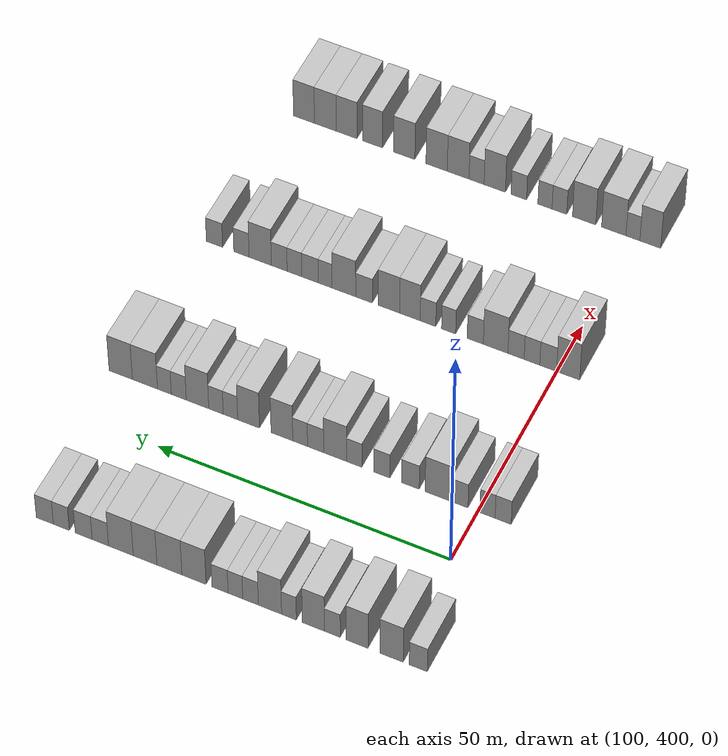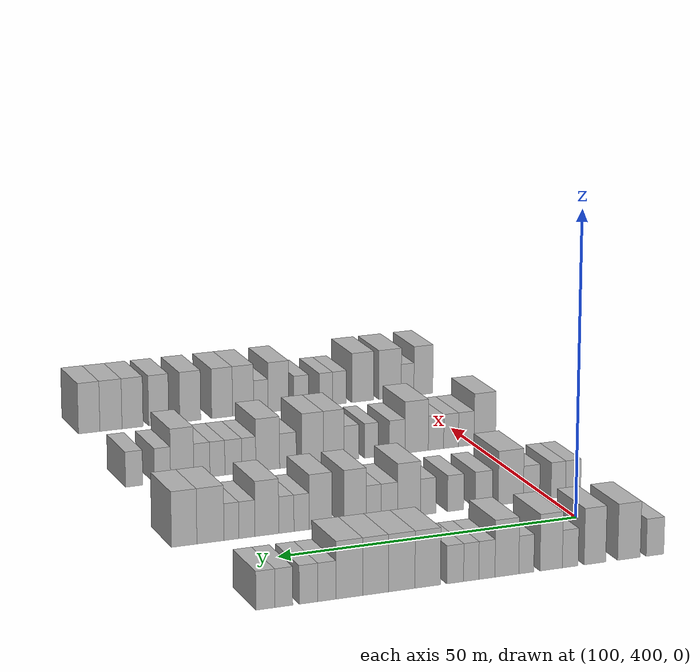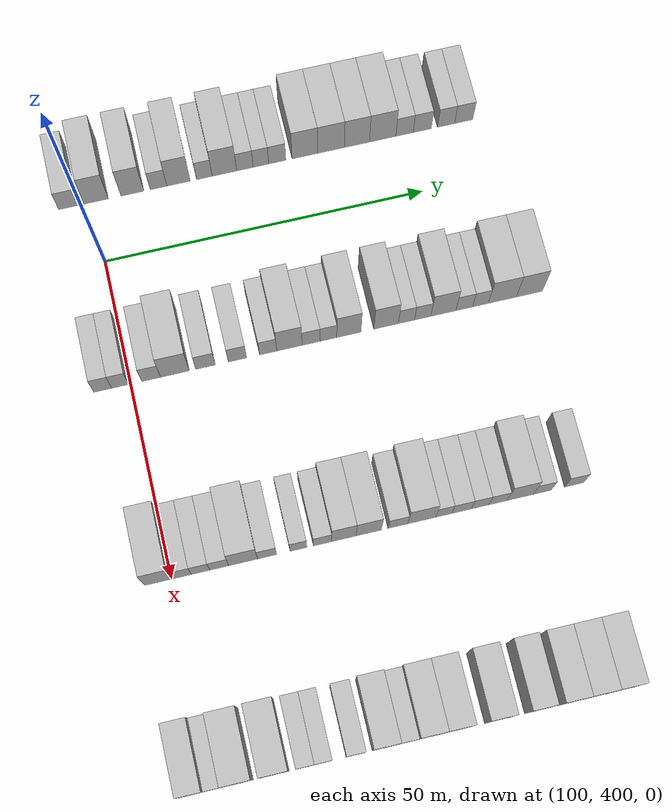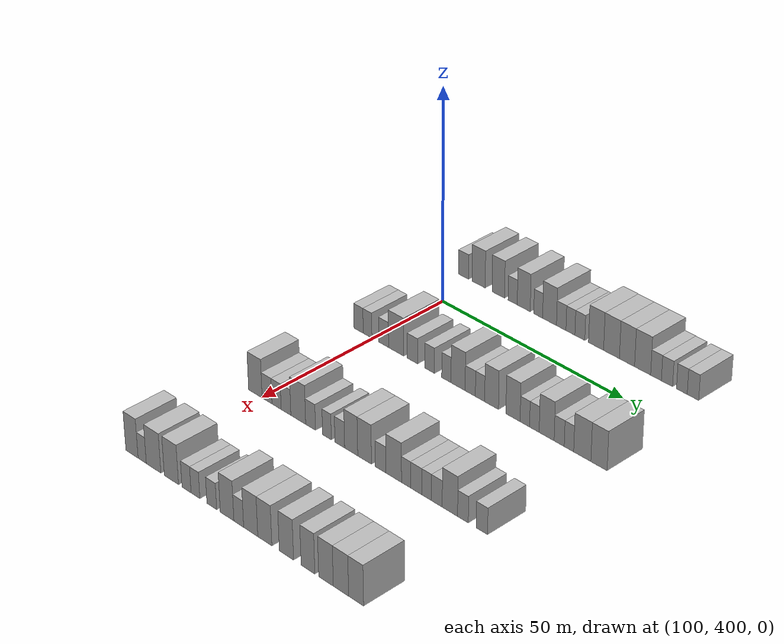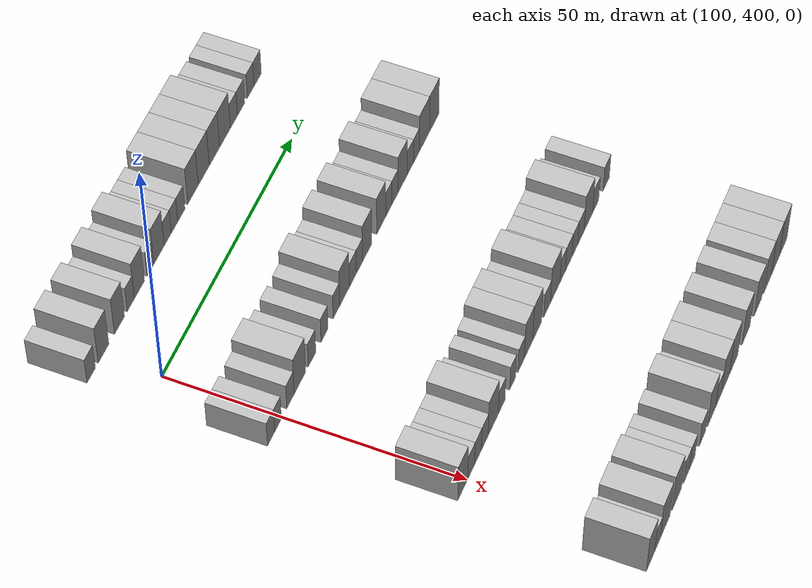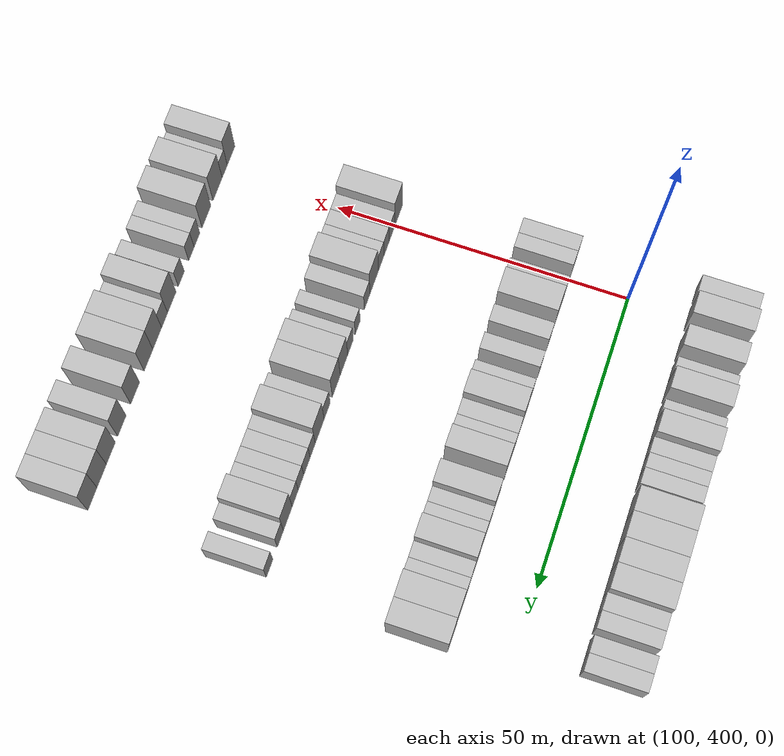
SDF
<sdf version="1.6">
 <world name="default">
  <model name="building_661">
   <static>1</static>
   <pose>85.0000 396.0986 0 0.000000 0.000000 0.000000</pose>
   <link name="link">
    <pose>0 0 3.00 0 0 0</pose>
    <collision name="collision"><geometry><box><size>10.0000 2.9758 6.0000</size></box></geometry></collision>
    <visual name="visual">
     <cast_shadows>0</cast_shadows>
     <geometry><box><size>10.0000 2.9758 6.0000</size></box></geometry>
     <material>
      <script>
       <uri>model://HANNAS_wall/materials/scripts</uri>
       <uri>model://HANNAS_wall/materials/textures</uri>
       <name>vrc/HANNAS_wall</name>
      </script>
     </material>
    </visual>
   </link>
  </model>
  <model name="building_662">
   <static>1</static>
   <pose>85.0000 400.4997 0 0.000000 0.000000 0.000000</pose>
   <link name="link">
    <pose>0 0 4.50 0 0 0</pose>
    <collision name="collision"><geometry><box><size>10.0000 3.8264 9.0000</size></box></geometry></collision>
    <visual name="visual">
     <cast_shadows>0</cast_shadows>
     <geometry><box><size>10.0000 3.8264 9.0000</size></box></geometry>
     <material>
      <script>
       <uri>model://HANNAS_wall/materials/scripts</uri>
       <uri>model://HANNAS_wall/materials/textures</uri>
       <name>vrc/HANNAS_wall</name>
      </script>
     </material>
    </visual>
   </link>
  </model>
  <model name="building_663">
   <static>1</static>
   <pose>85.0000 406.2204 0 0.000000 0.000000 0.000000</pose>
   <link name="link">
    <pose>0 0 4.50 0 0 0</pose>
    <collision name="collision"><geometry><box><size>10.0000 3.6149 9.0000</size></box></geometry></collision>
    <visual name="visual">
     <cast_shadows>0</cast_shadows>
     <geometry><box><size>10.0000 3.6149 9.0000</size></box></geometry>
     <material>
      <script>
       <uri>model://HANNAS_wall/materials/scripts</uri>
       <uri>model://HANNAS_wall/materials/textures</uri>
       <name>vrc/HANNAS_wall</name>
      </script>
     </material>
    </visual>
   </link>
  </model>
  <model name="building_664">
   <static>1</static>
   <pose>85.0000 410.3458 0 0.000000 0.000000 0.000000</pose>
   <link name="link">
    <pose>0 0 3.00 0 0 0</pose>
    <collision name="collision"><geometry><box><size>10.0000 2.6360 6.0000</size></box></geometry></collision>
    <visual name="visual">
     <cast_shadows>0</cast_shadows>
     <geometry><box><size>10.0000 2.6360 6.0000</size></box></geometry>
     <material>
      <script>
       <uri>model://HANNAS_wall/materials/scripts</uri>
       <uri>model://HANNAS_wall/materials/textures</uri>
       <name>vrc/HANNAS_wall</name>
      </script>
     </material>
    </visual>
   </link>
  </model>
  <model name="building_665">
   <static>1</static>
   <pose>85.0000 413.5150 0 0.000000 0.000000 0.000000</pose>
   <link name="link">
    <pose>0 0 4.50 0 0 0</pose>
    <collision name="collision"><geometry><box><size>10.0000 3.7025 9.0000</size></box></geometry></collision>
    <visual name="visual">
     <cast_shadows>0</cast_shadows>
     <geometry><box><size>10.0000 3.7025 9.0000</size></box></geometry>
     <material>
      <script>
       <uri>model://HANNAS_wall/materials/scripts</uri>
       <uri>model://HANNAS_wall/materials/textures</uri>
       <name>vrc/HANNAS_wall</name>
      </script>
     </material>
    </visual>
   </link>
  </model>
  <model name="building_666">
   <static>1</static>
   <pose>85.0000 417.6092 0 0.000000 0.000000 0.000000</pose>
   <link name="link">
    <pose>0 0 3.00 0 0 0</pose>
    <collision name="collision"><geometry><box><size>10.0000 2.4859 6.0000</size></box></geometry></collision>
    <visual name="visual">
     <cast_shadows>0</cast_shadows>
     <geometry><box><size>10.0000 2.4859 6.0000</size></box></geometry>
     <material>
      <script>
       <uri>model://HANNAS_wall/materials/scripts</uri>
       <uri>model://HANNAS_wall/materials/textures</uri>
       <name>vrc/HANNAS_wall</name>
      </script>
     </material>
    </visual>
   </link>
  </model>
  <model name="building_667">
   <static>1</static>
   <pose>85.0000 420.8003 0 0.000000 0.000000 0.000000</pose>
   <link name="link">
    <pose>0 0 4.50 0 0 0</pose>
    <collision name="collision"><geometry><box><size>10.0000 3.8964 9.0000</size></box></geometry></collision>
    <visual name="visual">
     <cast_shadows>0</cast_shadows>
     <geometry><box><size>10.0000 3.8964 9.0000</size></box></geometry>
     <material>
      <script>
       <uri>model://HANNAS_wall/materials/scripts</uri>
       <uri>model://HANNAS_wall/materials/textures</uri>
       <name>vrc/HANNAS_wall</name>
      </script>
     </material>
    </visual>
   </link>
  </model>
  <model name="building_668">
   <static>1</static>
   <pose>85.0000 424.0663 0 0.000000 0.000000 0.000000</pose>
   <link name="link">
    <pose>0 0 3.00 0 0 0</pose>
    <collision name="collision"><geometry><box><size>10.0000 2.6355 6.0000</size></box></geometry></collision>
    <visual name="visual">
     <cast_shadows>0</cast_shadows>
     <geometry><box><size>10.0000 2.6355 6.0000</size></box></geometry>
     <material>
      <script>
       <uri>model://HANNAS_wall/materials/scripts</uri>
       <uri>model://HANNAS_wall/materials/textures</uri>
       <name>vrc/HANNAS_wall</name>
      </script>
     </material>
    </visual>
   </link>
  </model>
  <model name="building_669">
   <static>1</static>
   <pose>85.0000 426.6185 0 0.000000 0.000000 0.000000</pose>
   <link name="link">
    <pose>0 0 3.00 0 0 0</pose>
    <collision name="collision"><geometry><box><size>10.0000 2.4688 6.0000</size></box></geometry></collision>
    <visual name="visual">
     <cast_shadows>0</cast_shadows>
     <geometry><box><size>10.0000 2.4688 6.0000</size></box></geometry>
     <material>
      <script>
       <uri>model://HANNAS_wall/materials/scripts</uri>
       <uri>model://HANNAS_wall/materials/textures</uri>
       <name>vrc/HANNAS_wall</name>
      </script>
     </material>
    </visual>
   </link>
  </model>
  <model name="building_670">
   <static>1</static>
   <pose>85.0000 429.2180 0 0.000000 0.000000 0.000000</pose>
   <link name="link">
    <pose>0 0 3.00 0 0 0</pose>
    <collision name="collision"><geometry><box><size>10.0000 2.7302 6.0000</size></box></geometry></collision>
    <visual name="visual">
     <cast_shadows>0</cast_shadows>
     <geometry><box><size>10.0000 2.7302 6.0000</size></box></geometry>
     <material>
      <script>
       <uri>model://HANNAS_wall/materials/scripts</uri>
       <uri>model://HANNAS_wall/materials/textures</uri>
       <name>vrc/HANNAS_wall</name>
      </script>
     </material>
    </visual>
   </link>
  </model>
  <model name="building_671">
   <static>1</static>
   <pose>85.0000 433.6366 0 0.000000 0.000000 0.000000</pose>
   <link name="link">
    <pose>0 0 4.50 0 0 0</pose>
    <collision name="collision"><geometry><box><size>10.0000 4.1070 9.0000</size></box></geometry></collision>
    <visual name="visual">
     <cast_shadows>0</cast_shadows>
     <geometry><box><size>10.0000 4.1070 9.0000</size></box></geometry>
     <material>
      <script>
       <uri>model://HANNAS_wall/materials/scripts</uri>
       <uri>model://HANNAS_wall/materials/textures</uri>
       <name>vrc/HANNAS_wall</name>
      </script>
     </material>
    </visual>
   </link>
  </model>
  <model name="building_672">
   <static>1</static>
   <pose>85.0000 437.8182 0 0.000000 0.000000 0.000000</pose>
   <link name="link">
    <pose>0 0 4.50 0 0 0</pose>
    <collision name="collision"><geometry><box><size>10.0000 4.2560 9.0000</size></box></geometry></collision>
    <visual name="visual">
     <cast_shadows>0</cast_shadows>
     <geometry><box><size>10.0000 4.2560 9.0000</size></box></geometry>
     <material>
      <script>
       <uri>model://HANNAS_wall/materials/scripts</uri>
       <uri>model://HANNAS_wall/materials/textures</uri>
       <name>vrc/HANNAS_wall</name>
      </script>
     </material>
    </visual>
   </link>
  </model>
  <model name="building_673">
   <static>1</static>
   <pose>85.0000 441.9720 0 0.000000 0.000000 0.000000</pose>
   <link name="link">
    <pose>0 0 4.50 0 0 0</pose>
    <collision name="collision"><geometry><box><size>10.0000 4.0517 9.0000</size></box></geometry></collision>
    <visual name="visual">
     <cast_shadows>0</cast_shadows>
     <geometry><box><size>10.0000 4.0517 9.0000</size></box></geometry>
     <material>
      <script>
       <uri>model://HANNAS_wall/materials/scripts</uri>
       <uri>model://HANNAS_wall/materials/textures</uri>
       <name>vrc/HANNAS_wall</name>
      </script>
     </material>
    </visual>
   </link>
  </model>
  <model name="building_674">
   <static>1</static>
   <pose>85.0000 446.1203 0 0.000000 0.000000 0.000000</pose>
   <link name="link">
    <pose>0 0 4.50 0 0 0</pose>
    <collision name="collision"><geometry><box><size>10.0000 4.2451 9.0000</size></box></geometry></collision>
    <visual name="visual">
     <cast_shadows>0</cast_shadows>
     <geometry><box><size>10.0000 4.2451 9.0000</size></box></geometry>
     <material>
      <script>
       <uri>model://HANNAS_wall/materials/scripts</uri>
       <uri>model://HANNAS_wall/materials/textures</uri>
       <name>vrc/HANNAS_wall</name>
      </script>
     </material>
    </visual>
   </link>
  </model>
  <model name="building_675">
   <static>1</static>
   <pose>85.0000 449.6496 0 0.000000 0.000000 0.000000</pose>
   <link name="link">
    <pose>0 0 3.00 0 0 0</pose>
    <collision name="collision"><geometry><box><size>10.0000 2.8134 6.0000</size></box></geometry></collision>
    <visual name="visual">
     <cast_shadows>0</cast_shadows>
     <geometry><box><size>10.0000 2.8134 6.0000</size></box></geometry>
     <material>
      <script>
       <uri>model://HANNAS_wall/materials/scripts</uri>
       <uri>model://HANNAS_wall/materials/textures</uri>
       <name>vrc/HANNAS_wall</name>
      </script>
     </material>
    </visual>
   </link>
  </model>
  <model name="building_676">
   <static>1</static>
   <pose>85.0000 452.5190 0 0.000000 0.000000 0.000000</pose>
   <link name="link">
    <pose>0 0 3.00 0 0 0</pose>
    <collision name="collision"><geometry><box><size>10.0000 2.9254 6.0000</size></box></geometry></collision>
    <visual name="visual">
     <cast_shadows>0</cast_shadows>
     <geometry><box><size>10.0000 2.9254 6.0000</size></box></geometry>
     <material>
      <script>
       <uri>model://HANNAS_wall/materials/scripts</uri>
       <uri>model://HANNAS_wall/materials/textures</uri>
       <name>vrc/HANNAS_wall</name>
      </script>
     </material>
    </visual>
   </link>
  </model>
  <model name="building_677">
   <static>1</static>
   <pose>85.0000 456.3690 0 0.000000 0.000000 0.000000</pose>
   <link name="link">
    <pose>0 0 3.00 0 0 0</pose>
    <collision name="collision"><geometry><box><size>10.0000 2.7746 6.0000</size></box></geometry></collision>
    <visual name="visual">
     <cast_shadows>0</cast_shadows>
     <geometry><box><size>10.0000 2.7746 6.0000</size></box></geometry>
     <material>
      <script>
       <uri>model://HANNAS_wall/materials/scripts</uri>
       <uri>model://HANNAS_wall/materials/textures</uri>
       <name>vrc/HANNAS_wall</name>
      </script>
     </material>
    </visual>
   </link>
  </model>
  <model name="building_678">
   <static>1</static>
   <pose>85.0000 459.2274 0 0.000000 0.000000 0.000000</pose>
   <link name="link">
    <pose>0 0 3.00 0 0 0</pose>
    <collision name="collision"><geometry><box><size>10.0000 2.9423 6.0000</size></box></geometry></collision>
    <visual name="visual">
     <cast_shadows>0</cast_shadows>
     <geometry><box><size>10.0000 2.9423 6.0000</size></box></geometry>
     <material>
      <script>
       <uri>model://HANNAS_wall/materials/scripts</uri>
       <uri>model://HANNAS_wall/materials/textures</uri>
       <name>vrc/HANNAS_wall</name>
      </script>
     </material>
    </visual>
   </link>
  </model>
  <model name="building_891">
   <static>1</static>
   <pose>115.0000 395.7398 0 0.000000 0.000000 0.000000</pose>
   <link name="link">
    <pose>0 0 3.00 0 0 0</pose>
    <collision name="collision"><geometry><box><size>10.0000 2.7084 6.0000</size></box></geometry></collision>
    <visual name="visual">
     <cast_shadows>0</cast_shadows>
     <geometry><box><size>10.0000 2.7084 6.0000</size></box></geometry>
     <material>
      <script>
       <uri>model://HANNAS_wall/materials/scripts</uri>
       <uri>model://HANNAS_wall/materials/textures</uri>
       <name>vrc/HANNAS_wall</name>
      </script>
     </material>
    </visual>
   </link>
  </model>
  <model name="building_892">
   <static>1</static>
   <pose>115.0000 398.3757 0 0.000000 0.000000 0.000000</pose>
   <link name="link">
    <pose>0 0 3.00 0 0 0</pose>
    <collision name="collision"><geometry><box><size>10.0000 2.5634 6.0000</size></box></geometry></collision>
    <visual name="visual">
     <cast_shadows>0</cast_shadows>
     <geometry><box><size>10.0000 2.5634 6.0000</size></box></geometry>
     <material>
      <script>
       <uri>model://HANNAS_wall/materials/scripts</uri>
       <uri>model://HANNAS_wall/materials/textures</uri>
       <name>vrc/HANNAS_wall</name>
      </script>
     </material>
    </visual>
   </link>
  </model>
  <model name="building_893">
   <static>1</static>
   <pose>115.0000 403.0911 0 0.000000 0.000000 0.000000</pose>
   <link name="link">
    <pose>0 0 3.00 0 0 0</pose>
    <collision name="collision"><geometry><box><size>10.0000 2.8673 6.0000</size></box></geometry></collision>
    <visual name="visual">
     <cast_shadows>0</cast_shadows>
     <geometry><box><size>10.0000 2.8673 6.0000</size></box></geometry>
     <material>
      <script>
       <uri>model://HANNAS_wall/materials/scripts</uri>
       <uri>model://HANNAS_wall/materials/textures</uri>
       <name>vrc/HANNAS_wall</name>
      </script>
     </material>
    </visual>
   </link>
  </model>
  <model name="building_894">
   <static>1</static>
   <pose>115.0000 406.7219 0 0.000000 0.000000 0.000000</pose>
   <link name="link">
    <pose>0 0 4.50 0 0 0</pose>
    <collision name="collision"><geometry><box><size>10.0000 4.3945 9.0000</size></box></geometry></collision>
    <visual name="visual">
     <cast_shadows>0</cast_shadows>
     <geometry><box><size>10.0000 4.3945 9.0000</size></box></geometry>
     <material>
      <script>
       <uri>model://HANNAS_wall/materials/scripts</uri>
       <uri>model://HANNAS_wall/materials/textures</uri>
       <name>vrc/HANNAS_wall</name>
      </script>
     </material>
    </visual>
   </link>
  </model>
  <model name="building_895">
   <static>1</static>
   <pose>115.0000 411.4085 0 0.000000 0.000000 0.000000</pose>
   <link name="link">
    <pose>0 0 3.00 0 0 0</pose>
    <collision name="collision"><geometry><box><size>10.0000 2.9787 6.0000</size></box></geometry></collision>
    <visual name="visual">
     <cast_shadows>0</cast_shadows>
     <geometry><box><size>10.0000 2.9787 6.0000</size></box></geometry>
     <material>
      <script>
       <uri>model://HANNAS_wall/materials/scripts</uri>
       <uri>model://HANNAS_wall/materials/textures</uri>
       <name>vrc/HANNAS_wall</name>
      </script>
     </material>
    </visual>
   </link>
  </model>
  <model name="building_896">
   <static>1</static>
   <pose>115.0000 416.3009 0 0.000000 0.000000 0.000000</pose>
   <link name="link">
    <pose>0 0 3.00 0 0 0</pose>
    <collision name="collision"><geometry><box><size>10.0000 2.8063 6.0000</size></box></geometry></collision>
    <visual name="visual">
     <cast_shadows>0</cast_shadows>
     <geometry><box><size>10.0000 2.8063 6.0000</size></box></geometry>
     <material>
      <script>
       <uri>model://HANNAS_wall/materials/scripts</uri>
       <uri>model://HANNAS_wall/materials/textures</uri>
       <name>vrc/HANNAS_wall</name>
      </script>
     </material>
    </visual>
   </link>
  </model>
  <model name="building_897">
   <static>1</static>
   <pose>115.0000 421.0170 0 0.000000 0.000000 0.000000</pose>
   <link name="link">
    <pose>0 0 3.00 0 0 0</pose>
    <collision name="collision"><geometry><box><size>10.0000 2.6260 6.0000</size></box></geometry></collision>
    <visual name="visual">
     <cast_shadows>0</cast_shadows>
     <geometry><box><size>10.0000 2.6260 6.0000</size></box></geometry>
     <material>
      <script>
       <uri>model://HANNAS_wall/materials/scripts</uri>
       <uri>model://HANNAS_wall/materials/textures</uri>
       <name>vrc/HANNAS_wall</name>
      </script>
     </material>
    </visual>
   </link>
  </model>
  <model name="building_898">
   <static>1</static>
   <pose>115.0000 424.2917 0 0.000000 0.000000 0.000000</pose>
   <link name="link">
    <pose>0 0 4.50 0 0 0</pose>
    <collision name="collision"><geometry><box><size>10.0000 3.9233 9.0000</size></box></geometry></collision>
    <visual name="visual">
     <cast_shadows>0</cast_shadows>
     <geometry><box><size>10.0000 3.9233 9.0000</size></box></geometry>
     <material>
      <script>
       <uri>model://HANNAS_wall/materials/scripts</uri>
       <uri>model://HANNAS_wall/materials/textures</uri>
       <name>vrc/HANNAS_wall</name>
      </script>
     </material>
    </visual>
   </link>
  </model>
  <model name="building_899">
   <static>1</static>
   <pose>115.0000 427.6500 0 0.000000 0.000000 0.000000</pose>
   <link name="link">
    <pose>0 0 3.00 0 0 0</pose>
    <collision name="collision"><geometry><box><size>10.0000 2.7934 6.0000</size></box></geometry></collision>
    <visual name="visual">
     <cast_shadows>0</cast_shadows>
     <geometry><box><size>10.0000 2.7934 6.0000</size></box></geometry>
     <material>
      <script>
       <uri>model://HANNAS_wall/materials/scripts</uri>
       <uri>model://HANNAS_wall/materials/textures</uri>
       <name>vrc/HANNAS_wall</name>
      </script>
     </material>
    </visual>
   </link>
  </model>
  <model name="building_900">
   <static>1</static>
   <pose>115.0000 430.3211 0 0.000000 0.000000 0.000000</pose>
   <link name="link">
    <pose>0 0 3.00 0 0 0</pose>
    <collision name="collision"><geometry><box><size>10.0000 2.5487 6.0000</size></box></geometry></collision>
    <visual name="visual">
     <cast_shadows>0</cast_shadows>
     <geometry><box><size>10.0000 2.5487 6.0000</size></box></geometry>
     <material>
      <script>
       <uri>model://HANNAS_wall/materials/scripts</uri>
       <uri>model://HANNAS_wall/materials/textures</uri>
       <name>vrc/HANNAS_wall</name>
      </script>
     </material>
    </visual>
   </link>
  </model>
  <model name="building_901">
   <static>1</static>
   <pose>115.0000 433.4726 0 0.000000 0.000000 0.000000</pose>
   <link name="link">
    <pose>0 0 4.50 0 0 0</pose>
    <collision name="collision"><geometry><box><size>10.0000 3.7544 9.0000</size></box></geometry></collision>
    <visual name="visual">
     <cast_shadows>0</cast_shadows>
     <geometry><box><size>10.0000 3.7544 9.0000</size></box></geometry>
     <material>
      <script>
       <uri>model://HANNAS_wall/materials/scripts</uri>
       <uri>model://HANNAS_wall/materials/textures</uri>
       <name>vrc/HANNAS_wall</name>
      </script>
     </material>
    </visual>
   </link>
  </model>
  <model name="building_902">
   <static>1</static>
   <pose>115.0000 439.2537 0 0.000000 0.000000 0.000000</pose>
   <link name="link">
    <pose>0 0 4.50 0 0 0</pose>
    <collision name="collision"><geometry><box><size>10.0000 3.8078 9.0000</size></box></geometry></collision>
    <visual name="visual">
     <cast_shadows>0</cast_shadows>
     <geometry><box><size>10.0000 3.8078 9.0000</size></box></geometry>
     <material>
      <script>
       <uri>model://HANNAS_wall/materials/scripts</uri>
       <uri>model://HANNAS_wall/materials/textures</uri>
       <name>vrc/HANNAS_wall</name>
      </script>
     </material>
    </visual>
   </link>
  </model>
  <model name="building_903">
   <static>1</static>
   <pose>115.0000 442.4133 0 0.000000 0.000000 0.000000</pose>
   <link name="link">
    <pose>0 0 3.00 0 0 0</pose>
    <collision name="collision"><geometry><box><size>10.0000 2.5115 6.0000</size></box></geometry></collision>
    <visual name="visual">
     <cast_shadows>0</cast_shadows>
     <geometry><box><size>10.0000 2.5115 6.0000</size></box></geometry>
     <material>
      <script>
       <uri>model://HANNAS_wall/materials/scripts</uri>
       <uri>model://HANNAS_wall/materials/textures</uri>
       <name>vrc/HANNAS_wall</name>
      </script>
     </material>
    </visual>
   </link>
  </model>
  <model name="building_904">
   <static>1</static>
   <pose>115.0000 444.9341 0 0.000000 0.000000 0.000000</pose>
   <link name="link">
    <pose>0 0 3.00 0 0 0</pose>
    <collision name="collision"><geometry><box><size>10.0000 2.5301 6.0000</size></box></geometry></collision>
    <visual name="visual">
     <cast_shadows>0</cast_shadows>
     <geometry><box><size>10.0000 2.5301 6.0000</size></box></geometry>
     <material>
      <script>
       <uri>model://HANNAS_wall/materials/scripts</uri>
       <uri>model://HANNAS_wall/materials/textures</uri>
       <name>vrc/HANNAS_wall</name>
      </script>
     </material>
    </visual>
   </link>
  </model>
  <model name="building_905">
   <static>1</static>
   <pose>115.0000 448.1637 0 0.000000 0.000000 0.000000</pose>
   <link name="link">
    <pose>0 0 4.50 0 0 0</pose>
    <collision name="collision"><geometry><box><size>10.0000 3.9291 9.0000</size></box></geometry></collision>
    <visual name="visual">
     <cast_shadows>0</cast_shadows>
     <geometry><box><size>10.0000 3.9291 9.0000</size></box></geometry>
     <material>
      <script>
       <uri>model://HANNAS_wall/materials/scripts</uri>
       <uri>model://HANNAS_wall/materials/textures</uri>
       <name>vrc/HANNAS_wall</name>
      </script>
     </material>
    </visual>
   </link>
  </model>
  <model name="building_906">
   <static>1</static>
   <pose>115.0000 451.4419 0 0.000000 0.000000 0.000000</pose>
   <link name="link">
    <pose>0 0 3.00 0 0 0</pose>
    <collision name="collision"><geometry><box><size>10.0000 2.6271 6.0000</size></box></geometry></collision>
    <visual name="visual">
     <cast_shadows>0</cast_shadows>
     <geometry><box><size>10.0000 2.6271 6.0000</size></box></geometry>
     <material>
      <script>
       <uri>model://HANNAS_wall/materials/scripts</uri>
       <uri>model://HANNAS_wall/materials/textures</uri>
       <name>vrc/HANNAS_wall</name>
      </script>
     </material>
    </visual>
   </link>
  </model>
  <model name="building_907">
   <static>1</static>
   <pose>115.0000 453.9766 0 0.000000 0.000000 0.000000</pose>
   <link name="link">
    <pose>0 0 3.00 0 0 0</pose>
    <collision name="collision"><geometry><box><size>10.0000 2.4425 6.0000</size></box></geometry></collision>
    <visual name="visual">
     <cast_shadows>0</cast_shadows>
     <geometry><box><size>10.0000 2.4425 6.0000</size></box></geometry>
     <material>
      <script>
       <uri>model://HANNAS_wall/materials/scripts</uri>
       <uri>model://HANNAS_wall/materials/textures</uri>
       <name>vrc/HANNAS_wall</name>
      </script>
     </material>
    </visual>
   </link>
  </model>
  <model name="building_908">
   <static>1</static>
   <pose>115.0000 457.4038 0 0.000000 0.000000 0.000000</pose>
   <link name="link">
    <pose>0 0 4.50 0 0 0</pose>
    <collision name="collision"><geometry><box><size>10.0000 4.4118 9.0000</size></box></geometry></collision>
    <visual name="visual">
     <cast_shadows>0</cast_shadows>
     <geometry><box><size>10.0000 4.4118 9.0000</size></box></geometry>
     <material>
      <script>
       <uri>model://HANNAS_wall/materials/scripts</uri>
       <uri>model://HANNAS_wall/materials/textures</uri>
       <name>vrc/HANNAS_wall</name>
      </script>
     </material>
    </visual>
   </link>
  </model>
  <model name="building_909">
   <static>1</static>
   <pose>115.0000 461.6678 0 0.000000 0.000000 0.000000</pose>
   <link name="link">
    <pose>0 0 4.50 0 0 0</pose>
    <collision name="collision"><geometry><box><size>10.0000 4.1162 9.0000</size></box></geometry></collision>
    <visual name="visual">
     <cast_shadows>0</cast_shadows>
     <geometry><box><size>10.0000 4.1162 9.0000</size></box></geometry>
     <material>
      <script>
       <uri>model://HANNAS_wall/materials/scripts</uri>
       <uri>model://HANNAS_wall/materials/textures</uri>
       <name>vrc/HANNAS_wall</name>
      </script>
     </material>
    </visual>
   </link>
  </model>
  <model name="building_1118">
   <static>1</static>
   <pose>145.0000 398.0752 0 0.000000 0.000000 0.000000</pose>
   <link name="link">
    <pose>0 0 4.50 0 0 0</pose>
    <collision name="collision"><geometry><box><size>10.0000 3.9774 9.0000</size></box></geometry></collision>
    <visual name="visual">
     <cast_shadows>0</cast_shadows>
     <geometry><box><size>10.0000 3.9774 9.0000</size></box></geometry>
     <material>
      <script>
       <uri>model://HANNAS_wall/materials/scripts</uri>
       <uri>model://HANNAS_wall/materials/textures</uri>
       <name>vrc/HANNAS_wall</name>
      </script>
     </material>
    </visual>
   </link>
  </model>
  <model name="building_1119">
   <static>1</static>
   <pose>145.0000 401.5060 0 0.000000 0.000000 0.000000</pose>
   <link name="link">
    <pose>0 0 3.00 0 0 0</pose>
    <collision name="collision"><geometry><box><size>10.0000 2.8843 6.0000</size></box></geometry></collision>
    <visual name="visual">
     <cast_shadows>0</cast_shadows>
     <geometry><box><size>10.0000 2.8843 6.0000</size></box></geometry>
     <material>
      <script>
       <uri>model://HANNAS_wall/materials/scripts</uri>
       <uri>model://HANNAS_wall/materials/textures</uri>
       <name>vrc/HANNAS_wall</name>
      </script>
     </material>
    </visual>
   </link>
  </model>
  <model name="building_1120">
   <static>1</static>
   <pose>145.0000 404.3006 0 0.000000 0.000000 0.000000</pose>
   <link name="link">
    <pose>0 0 3.00 0 0 0</pose>
    <collision name="collision"><geometry><box><size>10.0000 2.7048 6.0000</size></box></geometry></collision>
    <visual name="visual">
     <cast_shadows>0</cast_shadows>
     <geometry><box><size>10.0000 2.7048 6.0000</size></box></geometry>
     <material>
      <script>
       <uri>model://HANNAS_wall/materials/scripts</uri>
       <uri>model://HANNAS_wall/materials/textures</uri>
       <name>vrc/HANNAS_wall</name>
      </script>
     </material>
    </visual>
   </link>
  </model>
  <model name="building_1121">
   <static>1</static>
   <pose>145.0000 407.0536 0 0.000000 0.000000 0.000000</pose>
   <link name="link">
    <pose>0 0 3.00 0 0 0</pose>
    <collision name="collision"><geometry><box><size>10.0000 2.8011 6.0000</size></box></geometry></collision>
    <visual name="visual">
     <cast_shadows>0</cast_shadows>
     <geometry><box><size>10.0000 2.8011 6.0000</size></box></geometry>
     <material>
      <script>
       <uri>model://HANNAS_wall/materials/scripts</uri>
       <uri>model://HANNAS_wall/materials/textures</uri>
       <name>vrc/HANNAS_wall</name>
      </script>
     </material>
    </visual>
   </link>
  </model>
  <model name="building_1122">
   <static>1</static>
   <pose>145.0000 410.5821 0 0.000000 0.000000 0.000000</pose>
   <link name="link">
    <pose>0 0 4.50 0 0 0</pose>
    <collision name="collision"><geometry><box><size>10.0000 4.2560 9.0000</size></box></geometry></collision>
    <visual name="visual">
     <cast_shadows>0</cast_shadows>
     <geometry><box><size>10.0000 4.2560 9.0000</size></box></geometry>
     <material>
      <script>
       <uri>model://HANNAS_wall/materials/scripts</uri>
       <uri>model://HANNAS_wall/materials/textures</uri>
       <name>vrc/HANNAS_wall</name>
      </script>
     </material>
    </visual>
   </link>
  </model>
  <model name="building_1123">
   <static>1</static>
   <pose>145.0000 414.1169 0 0.000000 0.000000 0.000000</pose>
   <link name="link">
    <pose>0 0 3.00 0 0 0</pose>
    <collision name="collision"><geometry><box><size>10.0000 2.8136 6.0000</size></box></geometry></collision>
    <visual name="visual">
     <cast_shadows>0</cast_shadows>
     <geometry><box><size>10.0000 2.8136 6.0000</size></box></geometry>
     <material>
      <script>
       <uri>model://HANNAS_wall/materials/scripts</uri>
       <uri>model://HANNAS_wall/materials/textures</uri>
       <name>vrc/HANNAS_wall</name>
      </script>
     </material>
    </visual>
   </link>
  </model>
  <model name="building_1124">
   <static>1</static>
   <pose>145.0000 418.7586 0 0.000000 0.000000 0.000000</pose>
   <link name="link">
    <pose>0 0 3.00 0 0 0</pose>
    <collision name="collision"><geometry><box><size>10.0000 2.4697 6.0000</size></box></geometry></collision>
    <visual name="visual">
     <cast_shadows>0</cast_shadows>
     <geometry><box><size>10.0000 2.4697 6.0000</size></box></geometry>
     <material>
      <script>
       <uri>model://HANNAS_wall/materials/scripts</uri>
       <uri>model://HANNAS_wall/materials/textures</uri>
       <name>vrc/HANNAS_wall</name>
      </script>
     </material>
    </visual>
   </link>
  </model>
  <model name="building_1125">
   <static>1</static>
   <pose>145.0000 422.3525 0 0.000000 0.000000 0.000000</pose>
   <link name="link">
    <pose>0 0 3.00 0 0 0</pose>
    <collision name="collision"><geometry><box><size>10.0000 2.7182 6.0000</size></box></geometry></collision>
    <visual name="visual">
     <cast_shadows>0</cast_shadows>
     <geometry><box><size>10.0000 2.7182 6.0000</size></box></geometry>
     <material>
      <script>
       <uri>model://HANNAS_wall/materials/scripts</uri>
       <uri>model://HANNAS_wall/materials/textures</uri>
       <name>vrc/HANNAS_wall</name>
      </script>
     </material>
    </visual>
   </link>
  </model>
  <model name="building_1126">
   <static>1</static>
   <pose>145.0000 425.5265 0 0.000000 0.000000 0.000000</pose>
   <link name="link">
    <pose>0 0 4.50 0 0 0</pose>
    <collision name="collision"><geometry><box><size>10.0000 3.6297 9.0000</size></box></geometry></collision>
    <visual name="visual">
     <cast_shadows>0</cast_shadows>
     <geometry><box><size>10.0000 3.6297 9.0000</size></box></geometry>
     <material>
      <script>
       <uri>model://HANNAS_wall/materials/scripts</uri>
       <uri>model://HANNAS_wall/materials/textures</uri>
       <name>vrc/HANNAS_wall</name>
      </script>
     </material>
    </visual>
   </link>
  </model>
  <model name="building_1127">
   <static>1</static>
   <pose>145.0000 429.2352 0 0.000000 0.000000 0.000000</pose>
   <link name="link">
    <pose>0 0 4.50 0 0 0</pose>
    <collision name="collision"><geometry><box><size>10.0000 3.7877 9.0000</size></box></geometry></collision>
    <visual name="visual">
     <cast_shadows>0</cast_shadows>
     <geometry><box><size>10.0000 3.7877 9.0000</size></box></geometry>
     <material>
      <script>
       <uri>model://HANNAS_wall/materials/scripts</uri>
       <uri>model://HANNAS_wall/materials/textures</uri>
       <name>vrc/HANNAS_wall</name>
      </script>
     </material>
    </visual>
   </link>
  </model>
  <model name="building_1128">
   <static>1</static>
   <pose>145.0000 433.5976 0 0.000000 0.000000 0.000000</pose>
   <link name="link">
    <pose>0 0 3.00 0 0 0</pose>
    <collision name="collision"><geometry><box><size>10.0000 2.9371 6.0000</size></box></geometry></collision>
    <visual name="visual">
     <cast_shadows>0</cast_shadows>
     <geometry><box><size>10.0000 2.9371 6.0000</size></box></geometry>
     <material>
      <script>
       <uri>model://HANNAS_wall/materials/scripts</uri>
       <uri>model://HANNAS_wall/materials/textures</uri>
       <name>vrc/HANNAS_wall</name>
      </script>
     </material>
    </visual>
   </link>
  </model>
  <model name="building_1129">
   <static>1</static>
   <pose>145.0000 437.1585 0 0.000000 0.000000 0.000000</pose>
   <link name="link">
    <pose>0 0 4.50 0 0 0</pose>
    <collision name="collision"><geometry><box><size>10.0000 4.1847 9.0000</size></box></geometry></collision>
    <visual name="visual">
     <cast_shadows>0</cast_shadows>
     <geometry><box><size>10.0000 4.1847 9.0000</size></box></geometry>
     <material>
      <script>
       <uri>model://HANNAS_wall/materials/scripts</uri>
       <uri>model://HANNAS_wall/materials/textures</uri>
       <name>vrc/HANNAS_wall</name>
      </script>
     </material>
    </visual>
   </link>
  </model>
  <model name="building_1130">
   <static>1</static>
   <pose>145.0000 440.4640 0 0.000000 0.000000 0.000000</pose>
   <link name="link">
    <pose>0 0 3.00 0 0 0</pose>
    <collision name="collision"><geometry><box><size>10.0000 2.4263 6.0000</size></box></geometry></collision>
    <visual name="visual">
     <cast_shadows>0</cast_shadows>
     <geometry><box><size>10.0000 2.4263 6.0000</size></box></geometry>
     <material>
      <script>
       <uri>model://HANNAS_wall/materials/scripts</uri>
       <uri>model://HANNAS_wall/materials/textures</uri>
       <name>vrc/HANNAS_wall</name>
      </script>
     </material>
    </visual>
   </link>
  </model>
  <model name="building_1131">
   <static>1</static>
   <pose>145.0000 443.1539 0 0.000000 0.000000 0.000000</pose>
   <link name="link">
    <pose>0 0 3.00 0 0 0</pose>
    <collision name="collision"><geometry><box><size>10.0000 2.9534 6.0000</size></box></geometry></collision>
    <visual name="visual">
     <cast_shadows>0</cast_shadows>
     <geometry><box><size>10.0000 2.9534 6.0000</size></box></geometry>
     <material>
      <script>
       <uri>model://HANNAS_wall/materials/scripts</uri>
       <uri>model://HANNAS_wall/materials/textures</uri>
       <name>vrc/HANNAS_wall</name>
      </script>
     </material>
    </visual>
   </link>
  </model>
  <model name="building_1132">
   <static>1</static>
   <pose>145.0000 445.9278 0 0.000000 0.000000 0.000000</pose>
   <link name="link">
    <pose>0 0 3.00 0 0 0</pose>
    <collision name="collision"><geometry><box><size>10.0000 2.5945 6.0000</size></box></geometry></collision>
    <visual name="visual">
     <cast_shadows>0</cast_shadows>
     <geometry><box><size>10.0000 2.5945 6.0000</size></box></geometry>
     <material>
      <script>
       <uri>model://HANNAS_wall/materials/scripts</uri>
       <uri>model://HANNAS_wall/materials/textures</uri>
       <name>vrc/HANNAS_wall</name>
      </script>
     </material>
    </visual>
   </link>
  </model>
  <model name="building_1133">
   <static>1</static>
   <pose>145.0000 448.6230 0 0.000000 0.000000 0.000000</pose>
   <link name="link">
    <pose>0 0 3.00 0 0 0</pose>
    <collision name="collision"><geometry><box><size>10.0000 2.7959 6.0000</size></box></geometry></collision>
    <visual name="visual">
     <cast_shadows>0</cast_shadows>
     <geometry><box><size>10.0000 2.7959 6.0000</size></box></geometry>
     <material>
      <script>
       <uri>model://HANNAS_wall/materials/scripts</uri>
       <uri>model://HANNAS_wall/materials/textures</uri>
       <name>vrc/HANNAS_wall</name>
      </script>
     </material>
    </visual>
   </link>
  </model>
  <model name="building_1134">
   <static>1</static>
   <pose>145.0000 452.0143 0 0.000000 0.000000 0.000000</pose>
   <link name="link">
    <pose>0 0 4.50 0 0 0</pose>
    <collision name="collision"><geometry><box><size>10.0000 3.9867 9.0000</size></box></geometry></collision>
    <visual name="visual">
     <cast_shadows>0</cast_shadows>
     <geometry><box><size>10.0000 3.9867 9.0000</size></box></geometry>
     <material>
      <script>
       <uri>model://HANNAS_wall/materials/scripts</uri>
       <uri>model://HANNAS_wall/materials/textures</uri>
       <name>vrc/HANNAS_wall</name>
      </script>
     </material>
    </visual>
   </link>
  </model>
  <model name="building_1135">
   <static>1</static>
   <pose>145.0000 455.3815 0 0.000000 0.000000 0.000000</pose>
   <link name="link">
    <pose>0 0 3.00 0 0 0</pose>
    <collision name="collision"><geometry><box><size>10.0000 2.7478 6.0000</size></box></geometry></collision>
    <visual name="visual">
     <cast_shadows>0</cast_shadows>
     <geometry><box><size>10.0000 2.7478 6.0000</size></box></geometry>
     <material>
      <script>
       <uri>model://HANNAS_wall/materials/scripts</uri>
       <uri>model://HANNAS_wall/materials/textures</uri>
       <name>vrc/HANNAS_wall</name>
      </script>
     </material>
    </visual>
   </link>
  </model>
  <model name="building_1136">
   <static>1</static>
   <pose>145.0000 460.2198 0 0.000000 0.000000 0.000000</pose>
   <link name="link">
    <pose>0 0 3.00 0 0 0</pose>
    <collision name="collision"><geometry><box><size>10.0000 2.9286 6.0000</size></box></geometry></collision>
    <visual name="visual">
     <cast_shadows>0</cast_shadows>
     <geometry><box><size>10.0000 2.9286 6.0000</size></box></geometry>
     <material>
      <script>
       <uri>model://HANNAS_wall/materials/scripts</uri>
       <uri>model://HANNAS_wall/materials/textures</uri>
       <name>vrc/HANNAS_wall</name>
      </script>
     </material>
    </visual>
   </link>
  </model>
  <model name="building_1344">
   <static>1</static>
   <pose>175.0000 396.8582 0 0.000000 0.000000 0.000000</pose>
   <link name="link">
    <pose>0 0 4.50 0 0 0</pose>
    <collision name="collision"><geometry><box><size>10.0000 3.6414 9.0000</size></box></geometry></collision>
    <visual name="visual">
     <cast_shadows>0</cast_shadows>
     <geometry><box><size>10.0000 3.6414 9.0000</size></box></geometry>
     <material>
      <script>
       <uri>model://HANNAS_wall/materials/scripts</uri>
       <uri>model://HANNAS_wall/materials/textures</uri>
       <name>vrc/HANNAS_wall</name>
      </script>
     </material>
    </visual>
   </link>
  </model>
  <model name="building_1345">
   <static>1</static>
   <pose>175.0000 399.8912 0 0.000000 0.000000 0.000000</pose>
   <link name="link">
    <pose>0 0 3.00 0 0 0</pose>
    <collision name="collision"><geometry><box><size>10.0000 2.4246 6.0000</size></box></geometry></collision>
    <visual name="visual">
     <cast_shadows>0</cast_shadows>
     <geometry><box><size>10.0000 2.4246 6.0000</size></box></geometry>
     <material>
      <script>
       <uri>model://HANNAS_wall/materials/scripts</uri>
       <uri>model://HANNAS_wall/materials/textures</uri>
       <name>vrc/HANNAS_wall</name>
      </script>
     </material>
    </visual>
   </link>
  </model>
  <model name="building_1346">
   <static>1</static>
   <pose>175.0000 403.2559 0 0.000000 0.000000 0.000000</pose>
   <link name="link">
    <pose>0 0 4.50 0 0 0</pose>
    <collision name="collision"><geometry><box><size>10.0000 4.3048 9.0000</size></box></geometry></collision>
    <visual name="visual">
     <cast_shadows>0</cast_shadows>
     <geometry><box><size>10.0000 4.3048 9.0000</size></box></geometry>
     <material>
      <script>
       <uri>model://HANNAS_wall/materials/scripts</uri>
       <uri>model://HANNAS_wall/materials/textures</uri>
       <name>vrc/HANNAS_wall</name>
      </script>
     </material>
    </visual>
   </link>
  </model>
  <model name="building_1347">
   <static>1</static>
   <pose>175.0000 408.4709 0 0.000000 0.000000 0.000000</pose>
   <link name="link">
    <pose>0 0 4.50 0 0 0</pose>
    <collision name="collision"><geometry><box><size>10.0000 4.1251 9.0000</size></box></geometry></collision>
    <visual name="visual">
     <cast_shadows>0</cast_shadows>
     <geometry><box><size>10.0000 4.1251 9.0000</size></box></geometry>
     <material>
      <script>
       <uri>model://HANNAS_wall/materials/scripts</uri>
       <uri>model://HANNAS_wall/materials/textures</uri>
       <name>vrc/HANNAS_wall</name>
      </script>
     </material>
    </visual>
   </link>
  </model>
  <model name="building_1348">
   <static>1</static>
   <pose>175.0000 412.8389 0 0.000000 0.000000 0.000000</pose>
   <link name="link">
    <pose>0 0 3.00 0 0 0</pose>
    <collision name="collision"><geometry><box><size>10.0000 2.6108 6.0000</size></box></geometry></collision>
    <visual name="visual">
     <cast_shadows>0</cast_shadows>
     <geometry><box><size>10.0000 2.6108 6.0000</size></box></geometry>
     <material>
      <script>
       <uri>model://HANNAS_wall/materials/scripts</uri>
       <uri>model://HANNAS_wall/materials/textures</uri>
       <name>vrc/HANNAS_wall</name>
      </script>
     </material>
    </visual>
   </link>
  </model>
  <model name="building_1349">
   <static>1</static>
   <pose>175.0000 415.4007 0 0.000000 0.000000 0.000000</pose>
   <link name="link">
    <pose>0 0 3.00 0 0 0</pose>
    <collision name="collision"><geometry><box><size>10.0000 2.5128 6.0000</size></box></geometry></collision>
    <visual name="visual">
     <cast_shadows>0</cast_shadows>
     <geometry><box><size>10.0000 2.5128 6.0000</size></box></geometry>
     <material>
      <script>
       <uri>model://HANNAS_wall/materials/scripts</uri>
       <uri>model://HANNAS_wall/materials/textures</uri>
       <name>vrc/HANNAS_wall</name>
      </script>
     </material>
    </visual>
   </link>
  </model>
  <model name="building_1350">
   <static>1</static>
   <pose>175.0000 420.0380 0 0.000000 0.000000 0.000000</pose>
   <link name="link">
    <pose>0 0 3.00 0 0 0</pose>
    <collision name="collision"><geometry><box><size>10.0000 2.7618 6.0000</size></box></geometry></collision>
    <visual name="visual">
     <cast_shadows>0</cast_shadows>
     <geometry><box><size>10.0000 2.7618 6.0000</size></box></geometry>
     <material>
      <script>
       <uri>model://HANNAS_wall/materials/scripts</uri>
       <uri>model://HANNAS_wall/materials/textures</uri>
       <name>vrc/HANNAS_wall</name>
      </script>
     </material>
    </visual>
   </link>
  </model>
  <model name="building_1351">
   <static>1</static>
   <pose>175.0000 424.3232 0 0.000000 0.000000 0.000000</pose>
   <link name="link">
    <pose>0 0 4.50 0 0 0</pose>
    <collision name="collision"><geometry><box><size>10.0000 3.8085 9.0000</size></box></geometry></collision>
    <visual name="visual">
     <cast_shadows>0</cast_shadows>
     <geometry><box><size>10.0000 3.8085 9.0000</size></box></geometry>
     <material>
      <script>
       <uri>model://HANNAS_wall/materials/scripts</uri>
       <uri>model://HANNAS_wall/materials/textures</uri>
       <name>vrc/HANNAS_wall</name>
      </script>
     </material>
    </visual>
   </link>
  </model>
  <model name="building_1352">
   <static>1</static>
   <pose>175.0000 427.5766 0 0.000000 0.000000 0.000000</pose>
   <link name="link">
    <pose>0 0 3.00 0 0 0</pose>
    <collision name="collision"><geometry><box><size>10.0000 2.6982 6.0000</size></box></geometry></collision>
    <visual name="visual">
     <cast_shadows>0</cast_shadows>
     <geometry><box><size>10.0000 2.6982 6.0000</size></box></geometry>
     <material>
      <script>
       <uri>model://HANNAS_wall/materials/scripts</uri>
       <uri>model://HANNAS_wall/materials/textures</uri>
       <name>vrc/HANNAS_wall</name>
      </script>
     </material>
    </visual>
   </link>
  </model>
  <model name="building_1353">
   <static>1</static>
   <pose>175.0000 430.8712 0 0.000000 0.000000 0.000000</pose>
   <link name="link">
    <pose>0 0 4.50 0 0 0</pose>
    <collision name="collision"><geometry><box><size>10.0000 3.8910 9.0000</size></box></geometry></collision>
    <visual name="visual">
     <cast_shadows>0</cast_shadows>
     <geometry><box><size>10.0000 3.8910 9.0000</size></box></geometry>
     <material>
      <script>
       <uri>model://HANNAS_wall/materials/scripts</uri>
       <uri>model://HANNAS_wall/materials/textures</uri>
       <name>vrc/HANNAS_wall</name>
      </script>
     </material>
    </visual>
   </link>
  </model>
  <model name="building_1354">
   <static>1</static>
   <pose>175.0000 434.7329 0 0.000000 0.000000 0.000000</pose>
   <link name="link">
    <pose>0 0 4.50 0 0 0</pose>
    <collision name="collision"><geometry><box><size>10.0000 3.8325 9.0000</size></box></geometry></collision>
    <visual name="visual">
     <cast_shadows>0</cast_shadows>
     <geometry><box><size>10.0000 3.8325 9.0000</size></box></geometry>
     <material>
      <script>
       <uri>model://HANNAS_wall/materials/scripts</uri>
       <uri>model://HANNAS_wall/materials/textures</uri>
       <name>vrc/HANNAS_wall</name>
      </script>
     </material>
    </visual>
   </link>
  </model>
  <model name="building_1355">
   <static>1</static>
   <pose>175.0000 440.5624 0 0.000000 0.000000 0.000000</pose>
   <link name="link">
    <pose>0 0 4.50 0 0 0</pose>
    <collision name="collision"><geometry><box><size>10.0000 3.8263 9.0000</size></box></geometry></collision>
    <visual name="visual">
     <cast_shadows>0</cast_shadows>
     <geometry><box><size>10.0000 3.8263 9.0000</size></box></geometry>
     <material>
      <script>
       <uri>model://HANNAS_wall/materials/scripts</uri>
       <uri>model://HANNAS_wall/materials/textures</uri>
       <name>vrc/HANNAS_wall</name>
      </script>
     </material>
    </visual>
   </link>
  </model>
  <model name="building_1356">
   <static>1</static>
   <pose>175.0000 446.2928 0 0.000000 0.000000 0.000000</pose>
   <link name="link">
    <pose>0 0 4.50 0 0 0</pose>
    <collision name="collision"><geometry><box><size>10.0000 3.6346 9.0000</size></box></geometry></collision>
    <visual name="visual">
     <cast_shadows>0</cast_shadows>
     <geometry><box><size>10.0000 3.6346 9.0000</size></box></geometry>
     <material>
      <script>
       <uri>model://HANNAS_wall/materials/scripts</uri>
       <uri>model://HANNAS_wall/materials/textures</uri>
       <name>vrc/HANNAS_wall</name>
      </script>
     </material>
    </visual>
   </link>
  </model>
  <model name="building_1357">
   <static>1</static>
   <pose>175.0000 451.0142 0 0.000000 0.000000 0.000000</pose>
   <link name="link">
    <pose>0 0 4.50 0 0 0</pose>
    <collision name="collision"><geometry><box><size>10.0000 3.8081 9.0000</size></box></geometry></collision>
    <visual name="visual">
     <cast_shadows>0</cast_shadows>
     <geometry><box><size>10.0000 3.8081 9.0000</size></box></geometry>
     <material>
      <script>
       <uri>model://HANNAS_wall/materials/scripts</uri>
       <uri>model://HANNAS_wall/materials/textures</uri>
       <name>vrc/HANNAS_wall</name>
      </script>
     </material>
    </visual>
   </link>
  </model>
  <model name="building_1358">
   <static>1</static>
   <pose>175.0000 454.8983 0 0.000000 0.000000 0.000000</pose>
   <link name="link">
    <pose>0 0 4.50 0 0 0</pose>
    <collision name="collision"><geometry><box><size>10.0000 3.9600 9.0000</size></box></geometry></collision>
    <visual name="visual">
     <cast_shadows>0</cast_shadows>
     <geometry><box><size>10.0000 3.9600 9.0000</size></box></geometry>
     <material>
      <script>
       <uri>model://HANNAS_wall/materials/scripts</uri>
       <uri>model://HANNAS_wall/materials/textures</uri>
       <name>vrc/HANNAS_wall</name>
      </script>
     </material>
    </visual>
   </link>
  </model>
  <model name="building_1359">
   <static>1</static>
   <pose>175.0000 458.7929 0 0.000000 0.000000 0.000000</pose>
   <link name="link">
    <pose>0 0 4.50 0 0 0</pose>
    <collision name="collision"><geometry><box><size>10.0000 3.8292 9.0000</size></box></geometry></collision>
    <visual name="visual">
     <cast_shadows>0</cast_shadows>
     <geometry><box><size>10.0000 3.8292 9.0000</size></box></geometry>
     <material>
      <script>
       <uri>model://HANNAS_wall/materials/scripts</uri>
       <uri>model://HANNAS_wall/materials/textures</uri>
       <name>vrc/HANNAS_wall</name>
      </script>
     </material>
    </visual>
   </link>
  </model>
 </world>
</sdf>
